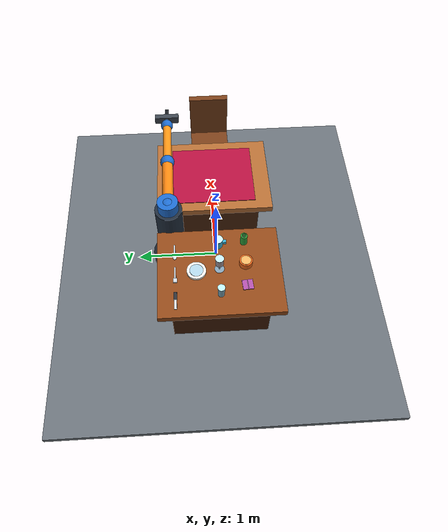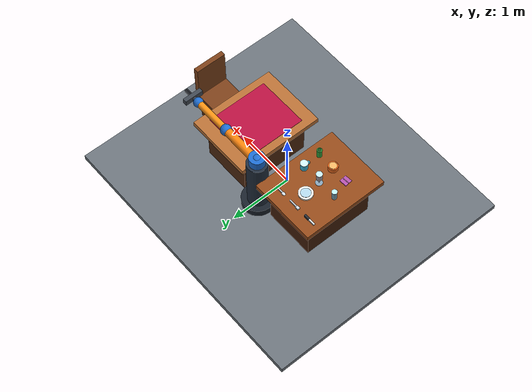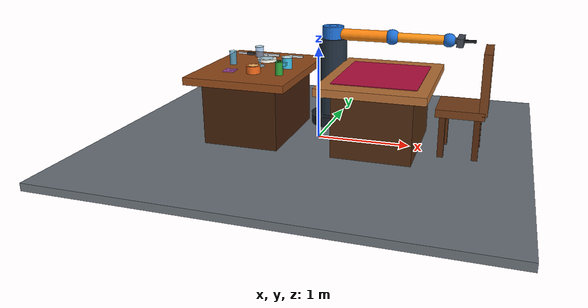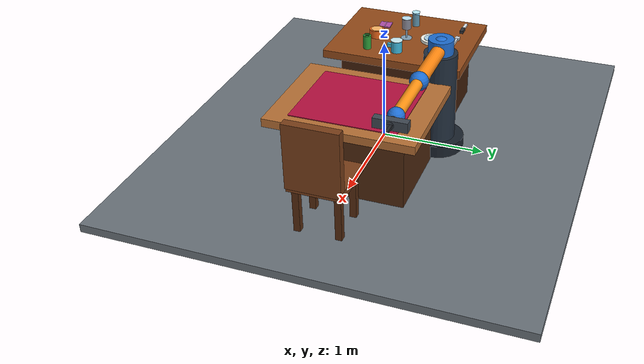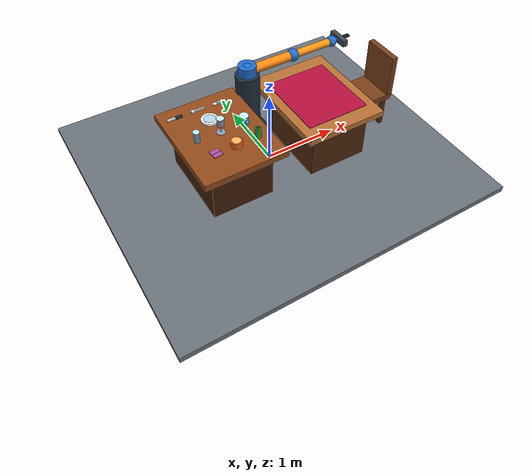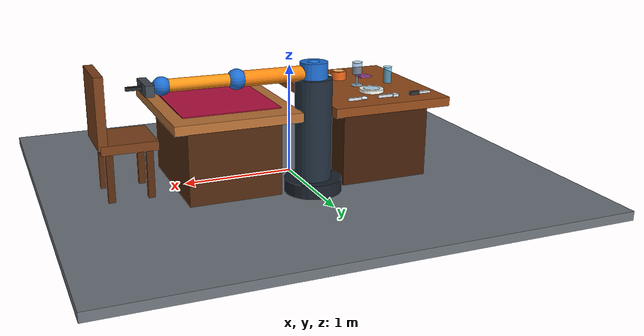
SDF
<?xml version="1.0"?>
<sdf version="1.10">
  <world name="arm_table_setting">
    <gravity>0 0 -9.81</gravity>
    <physics name="stable" type="ignored">
      <max_step_size>0.001</max_step_size>
      <real_time_factor>1.0</real_time_factor>
    </physics>
    <plugin filename="gz-sim-physics-system" name="gz::sim::systems::Physics"/>
    <plugin filename="gz-sim-user-commands-system" name="gz::sim::systems::UserCommands"/>
    <plugin filename="gz-sim-scene-broadcaster-system" name="gz::sim::systems::SceneBroadcaster"/>
    <plugin filename="gz-sim-sensors-system" name="gz::sim::systems::Sensors">
      <render_engine>ogre</render_engine>
    </plugin>

    <scene>
      <ambient>0.58 0.58 0.58 1</ambient>
      <background>0.80 0.87 0.94 1</background>
      <shadows>false</shadows>
      <grid>true</grid>
    </scene>
    <light name="sun" type="directional">
      <cast_shadows>false</cast_shadows>
      <pose>0 0 7 0 0 0</pose>
      <diffuse>0.95 0.95 0.95 1</diffuse>
      <specular>0.20 0.20 0.20 1</specular>
      <direction>-0.4 0.3 -1</direction>
    </light>

    <model name="floor">
      <static>true</static>
      <link name="body">
        <collision name="collision"><pose>0 0 -0.04 0 0 0</pose><geometry><box><size>4.5 4 0.08</size></box></geometry></collision>
        <visual name="visual"><pose>0 0 -0.04 0 0 0</pose><geometry><box><size>4.5 4 0.08</size></box></geometry><material><ambient>0.32 0.35 0.38 1</ambient><diffuse>0.42 0.45 0.48 1</diffuse></material></visual>
      </link>
    </model>

    <!-- Fixed RGB camera used by the image-based perception node. Gazebo
         cameras look along local +X; pitch +90 degrees points it downwards. -->
    <model name="overhead_camera">
      <static>true</static>
      <pose>-0.70 0 2.45 0 1.57079632679 0</pose>
      <link name="camera_link">
        <sensor name="rgb_sensor" type="camera">
          <always_on>true</always_on>
          <update_rate>5</update_rate>
          <topic>/table_setting/camera/image</topic>
          <camera>
            <horizontal_fov>1.0</horizontal_fov>
            <image>
              <width>640</width>
              <height>480</height>
              <format>R8G8B8</format>
            </image>
            <clip><near>0.05</near><far>5.0</far></clip>
          </camera>
        </sensor>
      </link>
    </model>

    <!-- Second RGB camera dedicated to the destination table. It estimates
         the real settled poses used by clean table. -->
    <model name="destination_overhead_camera">
      <static>true</static>
      <pose>0.70 0 2.45 0 1.57079632679 0</pose>
      <link name="camera_link">
        <sensor name="rgb_sensor" type="camera">
          <always_on>true</always_on>
          <update_rate>5</update_rate>
          <topic>/table_setting/destination_camera/image</topic>
          <camera>
            <horizontal_fov>1.0</horizontal_fov>
            <image>
              <width>640</width>
              <height>480</height>
              <format>R8G8B8</format>
            </image>
            <clip><near>0.05</near><far>5.0</far></clip>
          </camera>
        </sensor>
      </link>
    </model>

    <model name="source_table">
      <static>true</static><pose>-0.70 0 0 0 0 0</pose>
      <link name="body">
        <collision name="top"><pose>0 0 0.71 0 0 0</pose><geometry><box><size>1.10 1.40 0.08</size></box></geometry></collision>
        <visual name="top"><pose>0 0 0.71 0 0 0</pose><geometry><box><size>1.10 1.40 0.08</size></box></geometry><material><ambient>0.34 0.16 0.06 1</ambient><diffuse>0.58 0.29 0.10 1</diffuse></material></visual>
        <collision name="legs"><pose>0 0 0.34 0 0 0</pose><geometry><box><size>0.82 1.12 0.68</size></box></geometry></collision>
        <visual name="legs"><pose>0 0 0.34 0 0 0</pose><geometry><box><size>0.82 1.12 0.68</size></box></geometry><material><ambient>0.18 0.08 0.03 1</ambient><diffuse>0.26 0.12 0.04 1</diffuse></material></visual>
      </link>
      <!-- Source-table locks keep every waiting object immobile. The
           controller releases only the object already secured by the arm. -->
      <plugin filename="gz-sim-detachable-joint-system" name="gz::sim::systems::DetachableJoint"><parent_link>body</parent_link><child_model>glass</child_model><child_link>body</child_link><attach_topic>/table_setting/source_hold/glass/attach</attach_topic><detach_topic>/table_setting/source_hold/glass/detach</detach_topic></plugin>
      <plugin filename="gz-sim-detachable-joint-system" name="gz::sim::systems::DetachableJoint"><parent_link>body</parent_link><child_model>wine_glass</child_model><child_link>body</child_link><attach_topic>/table_setting/source_hold/wine_glass/attach</attach_topic><detach_topic>/table_setting/source_hold/wine_glass/detach</detach_topic></plugin>
      <plugin filename="gz-sim-detachable-joint-system" name="gz::sim::systems::DetachableJoint"><parent_link>body</parent_link><child_model>plate</child_model><child_link>body</child_link><attach_topic>/table_setting/source_hold/plate/attach</attach_topic><detach_topic>/table_setting/source_hold/plate/detach</detach_topic></plugin>
      <plugin filename="gz-sim-detachable-joint-system" name="gz::sim::systems::DetachableJoint"><parent_link>body</parent_link><child_model>cup</child_model><child_link>body</child_link><attach_topic>/table_setting/source_hold/cup/attach</attach_topic><detach_topic>/table_setting/source_hold/cup/detach</detach_topic></plugin>
      <plugin filename="gz-sim-detachable-joint-system" name="gz::sim::systems::DetachableJoint"><parent_link>body</parent_link><child_model>spoon</child_model><child_link>body</child_link><attach_topic>/table_setting/source_hold/spoon/attach</attach_topic><detach_topic>/table_setting/source_hold/spoon/detach</detach_topic></plugin>
      <plugin filename="gz-sim-detachable-joint-system" name="gz::sim::systems::DetachableJoint"><parent_link>body</parent_link><child_model>fork</child_model><child_link>body</child_link><attach_topic>/table_setting/source_hold/fork/attach</attach_topic><detach_topic>/table_setting/source_hold/fork/detach</detach_topic></plugin>
      <plugin filename="gz-sim-detachable-joint-system" name="gz::sim::systems::DetachableJoint"><parent_link>body</parent_link><child_model>knife</child_model><child_link>body</child_link><attach_topic>/table_setting/source_hold/knife/attach</attach_topic><detach_topic>/table_setting/source_hold/knife/detach</detach_topic></plugin>
      <plugin filename="gz-sim-detachable-joint-system" name="gz::sim::systems::DetachableJoint"><parent_link>body</parent_link><child_model>bottle</child_model><child_link>body</child_link><attach_topic>/table_setting/source_hold/bottle/attach</attach_topic><detach_topic>/table_setting/source_hold/bottle/detach</detach_topic></plugin>
      <plugin filename="gz-sim-detachable-joint-system" name="gz::sim::systems::DetachableJoint"><parent_link>body</parent_link><child_model>bowl</child_model><child_link>body</child_link><attach_topic>/table_setting/source_hold/bowl/attach</attach_topic><detach_topic>/table_setting/source_hold/bowl/detach</detach_topic></plugin>
      <plugin filename="gz-sim-detachable-joint-system" name="gz::sim::systems::DetachableJoint"><parent_link>body</parent_link><child_model>napkin</child_model><child_link>body</child_link><attach_topic>/table_setting/source_hold/napkin/attach</attach_topic><detach_topic>/table_setting/source_hold/napkin/detach</detach_topic></plugin>
    </model>

    <model name="destination_table">
      <static>true</static><pose>0.70 0 0 0 0 0</pose>
      <link name="body">
        <collision name="top"><pose>0 0 0.71 0 0 0</pose><geometry><box><size>1.10 1.40 0.08</size></box></geometry></collision>
        <visual name="top"><pose>0 0 0.71 0 0 0</pose><geometry><box><size>1.10 1.40 0.08</size></box></geometry><material><ambient>0.51 0.29 0.12 1</ambient><diffuse>0.72 0.44 0.21 1</diffuse></material></visual>
        <collision name="legs"><pose>0 0 0.34 0 0 0</pose><geometry><box><size>0.82 1.12 0.68</size></box></geometry></collision>
        <visual name="legs"><pose>0 0 0.34 0 0 0</pose><geometry><box><size>0.82 1.12 0.68</size></box></geometry><material><ambient>0.20 0.10 0.04 1</ambient><diffuse>0.31 0.16 0.06 1</diffuse></material></visual>
        <!-- The placemat has both visual and collision geometry. Its upper
             surface is z=0.760, preventing objects from sinking visually. -->
        <collision name="placemat"><pose>0 0 0.756 0 0 0</pose><geometry><box><size>0.86 1.00 0.008</size></box></geometry></collision>
        <visual name="placemat"><pose>0 0 0.756 0 0 0</pose><geometry><box><size>0.86 1.00 0.008</size></box></geometry><material><ambient>0.45 0.03 0.16 1</ambient><diffuse>0.72 0.06 0.25 1</diffuse></material></visual>
      </link>
      <!-- Destination-table locks engage immediately after release so placed
           objects cannot slide, rotate or be hit by a later motion. -->
      <plugin filename="gz-sim-detachable-joint-system" name="gz::sim::systems::DetachableJoint"><parent_link>body</parent_link><child_model>glass</child_model><child_link>body</child_link><attach_topic>/table_setting/destination_hold/glass/attach</attach_topic><detach_topic>/table_setting/destination_hold/glass/detach</detach_topic></plugin>
      <plugin filename="gz-sim-detachable-joint-system" name="gz::sim::systems::DetachableJoint"><parent_link>body</parent_link><child_model>wine_glass</child_model><child_link>body</child_link><attach_topic>/table_setting/destination_hold/wine_glass/attach</attach_topic><detach_topic>/table_setting/destination_hold/wine_glass/detach</detach_topic></plugin>
      <plugin filename="gz-sim-detachable-joint-system" name="gz::sim::systems::DetachableJoint"><parent_link>body</parent_link><child_model>plate</child_model><child_link>body</child_link><attach_topic>/table_setting/destination_hold/plate/attach</attach_topic><detach_topic>/table_setting/destination_hold/plate/detach</detach_topic></plugin>
      <plugin filename="gz-sim-detachable-joint-system" name="gz::sim::systems::DetachableJoint"><parent_link>body</parent_link><child_model>cup</child_model><child_link>body</child_link><attach_topic>/table_setting/destination_hold/cup/attach</attach_topic><detach_topic>/table_setting/destination_hold/cup/detach</detach_topic></plugin>
      <plugin filename="gz-sim-detachable-joint-system" name="gz::sim::systems::DetachableJoint"><parent_link>body</parent_link><child_model>spoon</child_model><child_link>body</child_link><attach_topic>/table_setting/destination_hold/spoon/attach</attach_topic><detach_topic>/table_setting/destination_hold/spoon/detach</detach_topic></plugin>
      <plugin filename="gz-sim-detachable-joint-system" name="gz::sim::systems::DetachableJoint"><parent_link>body</parent_link><child_model>fork</child_model><child_link>body</child_link><attach_topic>/table_setting/destination_hold/fork/attach</attach_topic><detach_topic>/table_setting/destination_hold/fork/detach</detach_topic></plugin>
      <plugin filename="gz-sim-detachable-joint-system" name="gz::sim::systems::DetachableJoint"><parent_link>body</parent_link><child_model>knife</child_model><child_link>body</child_link><attach_topic>/table_setting/destination_hold/knife/attach</attach_topic><detach_topic>/table_setting/destination_hold/knife/detach</detach_topic></plugin>
      <plugin filename="gz-sim-detachable-joint-system" name="gz::sim::systems::DetachableJoint"><parent_link>body</parent_link><child_model>bottle</child_model><child_link>body</child_link><attach_topic>/table_setting/destination_hold/bottle/attach</attach_topic><detach_topic>/table_setting/destination_hold/bottle/detach</detach_topic></plugin>
      <plugin filename="gz-sim-detachable-joint-system" name="gz::sim::systems::DetachableJoint"><parent_link>body</parent_link><child_model>bowl</child_model><child_link>body</child_link><attach_topic>/table_setting/destination_hold/bowl/attach</attach_topic><detach_topic>/table_setting/destination_hold/bowl/detach</detach_topic></plugin>
      <plugin filename="gz-sim-detachable-joint-system" name="gz::sim::systems::DetachableJoint"><parent_link>body</parent_link><child_model>napkin</child_model><child_link>body</child_link><attach_topic>/table_setting/destination_hold/napkin/attach</attach_topic><detach_topic>/table_setting/destination_hold/napkin/detach</detach_topic></plugin>
    </model>

    <!-- Chair on the side opposite the robot. Its back is on +X, so a seated
         person faces the destination table in the -X direction. -->
    <model name="dining_chair">
      <static>true</static><pose>1.52 0 0 0 0 0</pose>
      <link name="body">
        <collision name="seat"><pose>0 0 0.47 0 0 0</pose><geometry><box><size>0.48 0.50 0.08</size></box></geometry></collision>
        <visual name="seat"><pose>0 0 0.47 0 0 0</pose><geometry><box><size>0.48 0.50 0.08</size></box></geometry><material><ambient>0.24 0.12 0.05 1</ambient><diffuse>0.48 0.25 0.10 1</diffuse></material></visual>
        <collision name="back"><pose>0.22 0 0.78 0 0 0</pose><geometry><box><size>0.08 0.50 0.62</size></box></geometry></collision>
        <visual name="back"><pose>0.22 0 0.78 0 0 0</pose><geometry><box><size>0.08 0.50 0.62</size></box></geometry><material><ambient>0.24 0.12 0.05 1</ambient><diffuse>0.48 0.25 0.10 1</diffuse></material></visual>
        <collision name="front_left_leg"><pose>-0.17 0.19 0.225 0 0 0</pose><geometry><box><size>0.06 0.06 0.45</size></box></geometry></collision>
        <visual name="front_left_leg"><pose>-0.17 0.19 0.225 0 0 0</pose><geometry><box><size>0.06 0.06 0.45</size></box></geometry><material><ambient>0.16 0.08 0.03 1</ambient><diffuse>0.34 0.17 0.06 1</diffuse></material></visual>
        <collision name="front_right_leg"><pose>-0.17 -0.19 0.225 0 0 0</pose><geometry><box><size>0.06 0.06 0.45</size></box></geometry></collision>
        <visual name="front_right_leg"><pose>-0.17 -0.19 0.225 0 0 0</pose><geometry><box><size>0.06 0.06 0.45</size></box></geometry><material><ambient>0.16 0.08 0.03 1</ambient><diffuse>0.34 0.17 0.06 1</diffuse></material></visual>
        <collision name="back_left_leg"><pose>0.17 0.19 0.225 0 0 0</pose><geometry><box><size>0.06 0.06 0.45</size></box></geometry></collision>
        <visual name="back_left_leg"><pose>0.17 0.19 0.225 0 0 0</pose><geometry><box><size>0.06 0.06 0.45</size></box></geometry><material><ambient>0.16 0.08 0.03 1</ambient><diffuse>0.34 0.17 0.06 1</diffuse></material></visual>
        <collision name="back_right_leg"><pose>0.17 -0.19 0.225 0 0 0</pose><geometry><box><size>0.06 0.06 0.45</size></box></geometry></collision>
        <visual name="back_right_leg"><pose>0.17 -0.19 0.225 0 0 0</pose><geometry><box><size>0.06 0.06 0.45</size></box></geometry><material><ambient>0.16 0.08 0.03 1</ambient><diffuse>0.34 0.17 0.06 1</diffuse></material></visual>
      </link>
    </model>

    <!-- Three additional objects recognized by computer vision. They do not
         belong to a fixed meal recipe, but can be requested by name. -->
    <model name="bottle"><pose>-0.34 -0.30 0.825 0 0 0</pose><link name="body">
      <inertial><mass>0.25</mass><inertia><ixx>0.0012</ixx><iyy>0.0012</iyy><izz>0.0004</izz></inertia></inertial>
      <collision name="collision"><geometry><cylinder><radius>0.040</radius><length>0.15</length></cylinder></geometry></collision>
      <visual name="body"><pose>0 0 -0.006 0 0 0</pose><geometry><cylinder><radius>0.040</radius><length>0.138</length></cylinder></geometry><material><ambient>0.08 0.40 0.12 1</ambient><diffuse>0.18 0.62 0.22 1</diffuse></material></visual>
      <visual name="cap"><pose>0 0 0.069 0 0 0</pose><geometry><cylinder><radius>0.025</radius><length>0.012</length></cylinder></geometry><material><ambient>0.04 0.18 0.06 1</ambient><diffuse>0.08 0.30 0.10 1</diffuse></material></visual>
    </link></model>

    <model name="bowl"><pose>-0.63 -0.30 0.790 0 0 0</pose><link name="body">
      <inertial><mass>0.20</mass><inertia><ixx>0.00045</ixx><iyy>0.00045</iyy><izz>0.00065</izz></inertia></inertial>
      <collision name="collision"><geometry><cylinder><radius>0.075</radius><length>0.08</length></cylinder></geometry></collision>
      <visual name="outer"><geometry><cylinder><radius>0.075</radius><length>0.08</length></cylinder></geometry><material><ambient>0.75 0.25 0.06 1</ambient><diffuse>0.92 0.40 0.10 1</diffuse></material></visual>
      <visual name="inside"><pose>0 0 0.041 0 0 0</pose><geometry><cylinder><radius>0.058</radius><length>0.004</length></cylinder></geometry><material><ambient>0.98 0.66 0.35 1</ambient><diffuse>1.0 0.72 0.40 1</diffuse></material></visual>
    </link></model>

    <model name="napkin"><pose>-0.90 -0.30 0.756 0 0 0.08</pose><link name="body">
      <inertial><mass>0.08</mass><inertia><ixx>0.00010</ixx><iyy>0.00010</iyy><izz>0.00018</izz></inertia></inertial>
      <collision name="collision"><geometry><box><size>0.12 0.12 0.012</size></box></geometry></collision>
      <visual name="fabric"><geometry><box><size>0.12 0.12 0.012</size></box></geometry><material><ambient>0.50 0.16 0.48 1</ambient><diffuse>0.70 0.32 0.68 1</diffuse></material></visual>
      <visual name="fold"><pose>0 0 0.007 0 0 0</pose><geometry><box><size>0.105 0.008 0.003</size></box></geometry><material><ambient>0.72 0.38 0.70 1</ambient><diffuse>0.86 0.55 0.84 1</diffuse></material></visual>
    </link></model>

    <!-- Seven task-relevant dynamic table objects. -->
    <model name="glass"><pose>-1.00 0.00 0.825 0 0 0</pose><link name="body">
      <inertial><mass>0.12</mass><inertia><ixx>0.0003</ixx><iyy>0.0003</iyy><izz>0.0002</izz></inertia></inertial>
      <collision name="collision"><geometry><cylinder><radius>0.0375</radius><length>0.15</length></cylinder></geometry></collision>
      <visual name="glass"><geometry><cylinder><radius>0.0375</radius><length>0.15</length></cylinder></geometry><material><ambient>0.30 0.72 0.94 0.72</ambient><diffuse>0.30 0.72 0.94 0.72</diffuse></material></visual>
      <visual name="rim"><pose>0 0 0.075 0 0 0</pose><geometry><cylinder><radius>0.042</radius><length>0.004</length></cylinder></geometry><material><ambient>0.75 0.95 1 1</ambient><diffuse>0.75 0.95 1 1</diffuse></material></visual>
    </link></model>

    <model name="wine_glass"><pose>-0.68 0.00 0.860 0 0 0</pose><link name="body">
      <inertial><mass>0.16</mass><inertia><ixx>0.0007</ixx><iyy>0.0007</iyy><izz>0.0003</izz></inertia></inertial>
      <!-- Primitive collision proxy keeps the tall glass stable with ODE. -->
      <collision name="collision"><geometry><cylinder><radius>0.045</radius><length>0.22</length></cylinder></geometry></collision>
      <visual name="base"><pose>0 0 -0.106 0 0 0</pose><geometry><cylinder><radius>0.055</radius><length>0.008</length></cylinder></geometry><material><ambient>0.55 0.78 0.94 0.78</ambient><diffuse>0.55 0.78 0.94 0.78</diffuse></material></visual>
      <visual name="stem"><pose>0 0 -0.050 0 0 0</pose><geometry><cylinder><radius>0.008</radius><length>0.105</length></cylinder></geometry><material><ambient>0.55 0.78 0.94 0.78</ambient><diffuse>0.55 0.78 0.94 0.78</diffuse></material></visual>
      <visual name="cup"><pose>0 0 0.055 0 0 0</pose><geometry><cylinder><radius>0.045</radius><length>0.11</length></cylinder></geometry><material><ambient>0.45 0.67 0.90 0.62</ambient><diffuse>0.45 0.67 0.90 0.62</diffuse></material></visual>
      <visual name="rim"><pose>0 0 0.110 0 0 0</pose><geometry><cylinder><radius>0.049</radius><length>0.004</length></cylinder></geometry><material><ambient>0.78 0.93 1 1</ambient><diffuse>0.78 0.93 1 1</diffuse></material></visual>
    </link></model>

    <model name="plate"><pose>-0.70 0.26 0.765 0 0 0</pose><link name="body">
      <inertial><mass>0.28</mass><inertia><ixx>0.0007</ixx><iyy>0.0007</iyy><izz>0.0013</izz></inertia></inertial>
      <!-- Slightly smaller collision rim gives the parallel fingers a stable,
           visible edge grasp while preserving the 22 cm rendered plate. -->
      <collision name="collision"><geometry><cylinder><radius>0.10</radius><length>0.03</length></cylinder></geometry></collision>
      <visual name="plate"><geometry><cylinder><radius>0.11</radius><length>0.03</length></cylinder></geometry><material><ambient>0.92 0.92 0.88 1</ambient><diffuse>0.98 0.98 0.94 1</diffuse></material></visual>
      <visual name="inside"><pose>0 0 0.016 0 0 0</pose><geometry><cylinder><radius>0.077</radius><length>0.004</length></cylinder></geometry><material><ambient>0.70 0.84 0.91 1</ambient><diffuse>0.70 0.84 0.91 1</diffuse></material></visual>
    </link></model>

    <model name="cup"><pose>-0.36 0.00 0.810 0 0 0</pose><link name="body">
      <inertial><mass>0.18</mass><inertia><ixx>0.00035</ixx><iyy>0.00035</iyy><izz>0.00025</izz></inertia></inertial>
      <!-- Stable primitive proxies: mug body plus its handle. -->
      <collision name="body_collision"><geometry><cylinder><radius>0.055</radius><length>0.12</length></cylinder></geometry></collision>
      <collision name="handle_collision"><pose>0 -0.072 0 0 0 0</pose><geometry><box><size>0.035 0.045 0.035</size></box></geometry></collision>
      <visual name="outer"><geometry><cylinder><radius>0.055</radius><length>0.12</length></cylinder></geometry><material><ambient>0.20 0.62 0.76 1</ambient><diffuse>0.24 0.72 0.86 1</diffuse></material></visual>
      <visual name="rim"><pose>0 0 0.061 0 0 0</pose><geometry><cylinder><radius>0.059</radius><length>0.006</length></cylinder></geometry><material><ambient>0.82 0.95 0.98 1</ambient><diffuse>0.82 0.95 0.98 1</diffuse></material></visual>
      <visual name="handle"><pose>0 -0.072 0 0 0 0</pose><geometry><box><size>0.035 0.045 0.035</size></box></geometry><material><ambient>0.20 0.62 0.76 1</ambient><diffuse>0.24 0.72 0.86 1</diffuse></material></visual>
    </link></model>

    <model name="spoon"><pose>-0.44 0.50 0.765 0 0 0</pose><link name="body">
      <inertial><mass>0.055</mass><inertia><ixx>0.00018</ixx><iyy>0.00002</iyy><izz>0.00018</izz></inertia></inertial>
      <collision name="handle"><pose>0.025 0 0 0 0 0</pose><geometry><box><size>0.13 0.018 0.025</size></box></geometry></collision>
      <!-- Flat primitive proxy: unlike a sphere it cannot roll after release;
           the rendered spoon head remains ellipsoidal. -->
      <collision name="head"><pose>-0.065 0 0 0 0 0</pose><geometry><box><size>0.070 0.048 0.025</size></box></geometry></collision>
      <visual name="handle"><pose>0.025 0 0 0 0 0</pose><geometry><box><size>0.13 0.018 0.025</size></box></geometry><material><ambient>0.67 0.70 0.74 1</ambient><diffuse>0.84 0.87 0.90 1</diffuse></material></visual>
      <visual name="head"><pose>-0.065 0 0 0 0 0</pose><geometry><ellipsoid><radii>0.035 0.024 0.015</radii></ellipsoid></geometry><material><ambient>0.67 0.70 0.74 1</ambient><diffuse>0.84 0.87 0.90 1</diffuse></material></visual>
    </link></model>

    <model name="fork"><pose>-0.74 0.50 0.765 0 0 0</pose><link name="body">
      <inertial><mass>0.06</mass><inertia><ixx>0.00019</ixx><iyy>0.00002</iyy><izz>0.00019</izz></inertia></inertial>
      <collision name="handle"><pose>0.025 0 0 0 0 0</pose><geometry><box><size>0.14 0.018 0.025</size></box></geometry></collision>
      <collision name="head"><pose>-0.072 0 0 0 0 0</pose><geometry><box><size>0.055 0.045 0.025</size></box></geometry></collision>
      <visual name="handle"><pose>0.025 0 0 0 0 0</pose><geometry><box><size>0.14 0.018 0.025</size></box></geometry><material><ambient>0.65 0.68 0.72 1</ambient><diffuse>0.83 0.86 0.89 1</diffuse></material></visual>
      <!-- The head overlaps the handle by 1 mm so the RGB segmentation sees
           one connected fork contour instead of two independent objects. -->
      <visual name="head"><pose>-0.069 0 0 0 0 0</pose><geometry><box><size>0.050 0.045 0.025</size></box></geometry><material><ambient>0.65 0.68 0.72 1</ambient><diffuse>0.83 0.86 0.89 1</diffuse></material></visual>
    </link></model>

    <model name="knife"><pose>-1.06 0.50 0.765 0 0 0</pose><link name="body">
      <inertial><mass>0.075</mass><inertia><ixx>0.00022</ixx><iyy>0.000025</iyy><izz>0.00022</izz></inertia></inertial>
      <collision name="handle"><pose>0.055 0 0 0 0 0</pose><geometry><box><size>0.09 0.035 0.03</size></box></geometry></collision>
      <collision name="blade"><pose>-0.045 0 0 0 0 0</pose><geometry><box><size>0.11 0.028 0.018</size></box></geometry></collision>
      <visual name="handle"><pose>0.055 0 0 0 0 0</pose><geometry><box><size>0.09 0.035 0.03</size></box></geometry><material><ambient>0.10 0.11 0.12 1</ambient><diffuse>0.18 0.19 0.21 1</diffuse></material></visual>
      <visual name="blade"><pose>-0.045 0 0 0 0 0</pose><geometry><box><size>0.11 0.028 0.018</size></box></geometry><material><ambient>0.68 0.71 0.75 1</ambient><diffuse>0.88 0.91 0.94 1</diffuse></material></visual>
    </link></model>

    <!-- Four-axis articulated arm with a two-finger parallel gripper. -->
    <model name="table_setting_arm"><pose>0 0.55 0 0 0 0</pose><self_collide>false</self_collide>
      <link name="base">
        <inertial><mass>35</mass><inertia><ixx>3</ixx><iyy>3</iyy><izz>3</izz></inertia></inertial>
        <collision name="pedestal"><pose>0 0 0.50 0 0 0</pose><geometry><cylinder><radius>0.16</radius><length>1.0</length></cylinder></geometry></collision>
        <visual name="pedestal"><pose>0 0 0.50 0 0 0</pose><geometry><cylinder><radius>0.16</radius><length>1.0</length></cylinder></geometry><material><ambient>0.08 0.11 0.15 1</ambient><diffuse>0.13 0.18 0.24 1</diffuse></material></visual>
        <visual name="foot"><pose>0 0 0.06 0 0 0</pose><geometry><cylinder><radius>0.25</radius><length>0.12</length></cylinder></geometry><material><ambient>0.06 0.08 0.11 1</ambient><diffuse>0.10 0.13 0.17 1</diffuse></material></visual>
      </link>
      <link name="turret"><pose>0 0 1.05 0 0 0</pose>
        <inertial><mass>6</mass><inertia><ixx>0.12</ixx><iyy>0.12</iyy><izz>0.12</izz></inertia></inertial>
        <collision name="collision"><geometry><cylinder><radius>0.12</radius><length>0.18</length></cylinder></geometry></collision>
        <visual name="visual"><geometry><cylinder><radius>0.12</radius><length>0.18</length></cylinder></geometry><material><ambient>0.10 0.32 0.61 1</ambient><diffuse>0.12 0.43 0.82 1</diffuse></material></visual>
      </link>
      <link name="upper_arm"><pose relative_to="turret">0 0 0 0 0 0</pose>
        <inertial><pose>0.34 0 0 0 0 0</pose><mass>5</mass><inertia><ixx>0.07</ixx><iyy>0.20</iyy><izz>0.20</izz></inertia></inertial>
        <collision name="collision"><pose>0.34 0 0 0 1.5708 0</pose><geometry><cylinder><radius>0.065</radius><length>0.68</length></cylinder></geometry></collision>
        <visual name="arm"><pose>0.34 0 0 0 1.5708 0</pose><geometry><cylinder><radius>0.065</radius><length>0.68</length></cylinder></geometry><material><ambient>0.92 0.42 0.05 1</ambient><diffuse>1.0 0.53 0.06 1</diffuse></material></visual>
        <visual name="shoulder"><geometry><sphere><radius>0.105</radius></sphere></geometry><material><ambient>0.10 0.32 0.61 1</ambient><diffuse>0.12 0.43 0.82 1</diffuse></material></visual>
      </link>
      <link name="forearm"><pose relative_to="upper_arm">0.68 0 0 0 0 0</pose>
        <inertial><pose>0.31 0 0 0 0 0</pose><mass>3.5</mass><inertia><ixx>0.05</ixx><iyy>0.14</iyy><izz>0.14</izz></inertia></inertial>
        <collision name="collision"><pose>0.31 0 0 0 1.5708 0</pose><geometry><cylinder><radius>0.052</radius><length>0.62</length></cylinder></geometry></collision>
        <visual name="arm"><pose>0.31 0 0 0 1.5708 0</pose><geometry><cylinder><radius>0.052</radius><length>0.62</length></cylinder></geometry><material><ambient>0.93 0.46 0.06 1</ambient><diffuse>1.0 0.58 0.08 1</diffuse></material></visual>
        <visual name="elbow"><geometry><sphere><radius>0.085</radius></sphere></geometry><material><ambient>0.10 0.32 0.61 1</ambient><diffuse>0.12 0.43 0.82 1</diffuse></material></visual>
      </link>
      <link name="wrist"><pose relative_to="forearm">0.62 0 0 0 0 0</pose>
        <inertial><mass>1.2</mass><inertia><ixx>0.025</ixx><iyy>0.025</iyy><izz>0.025</izz></inertia></inertial>
        <collision name="collision"><geometry><sphere><radius>0.07</radius></sphere></geometry></collision>
        <visual name="joint"><geometry><sphere><radius>0.075</radius></sphere></geometry><material><ambient>0.10 0.32 0.61 1</ambient><diffuse>0.12 0.43 0.82 1</diffuse></material></visual>
        <visual name="connector"><pose>0.08 0 0 0 1.5708 0</pose><geometry><cylinder><radius>0.035</radius><length>0.16</length></cylinder></geometry><material><ambient>0.16 0.18 0.21 1</ambient><diffuse>0.24 0.27 0.31 1</diffuse></material></visual>
      </link>
      <link name="gripper_palm"><pose relative_to="wrist">0.16 0 0 0 0 0</pose>
        <inertial><mass>0.8</mass><inertia><ixx>0.012</ixx><iyy>0.012</iyy><izz>0.012</izz></inertia></inertial>
        <!-- Wide carriage: at maximum opening both sliding fingers still
             overlap the palm visually instead of appearing detached. -->
        <collision name="collision"><pose>-0.035 0 0 0 0 0</pose><geometry><box><size>0.07 0.30 0.09</size></box></geometry></collision>
        <visual name="palm"><pose>-0.035 0 0 0 0 0</pose><geometry><box><size>0.07 0.30 0.09</size></box></geometry><material><ambient>0.15 0.17 0.19 1</ambient><diffuse>0.25 0.28 0.32 1</diffuse></material></visual>
      </link>
      <link name="left_finger"><pose relative_to="gripper_palm">0 0.012 0 0 0 0</pose>
        <inertial><mass>0.12</mass><inertia><ixx>0.001</ixx><iyy>0.001</iyy><izz>0.001</izz></inertia></inertial>
        <collision name="collision"><pose>0.055 0 0 0 0 0</pose><geometry><box><size>0.14 0.024 0.025</size></box></geometry></collision>
        <visual name="finger"><pose>0.055 0 0 0 0 0</pose><geometry><box><size>0.14 0.024 0.025</size></box></geometry><material><ambient>0.08 0.09 0.10 1</ambient><diffuse>0.14 0.15 0.17 1</diffuse></material></visual>
      </link>
      <link name="right_finger"><pose relative_to="gripper_palm">0 -0.012 0 0 0 0</pose>
        <inertial><mass>0.12</mass><inertia><ixx>0.001</ixx><iyy>0.001</iyy><izz>0.001</izz></inertia></inertial>
        <collision name="collision"><pose>0.055 0 0 0 0 0</pose><geometry><box><size>0.14 0.024 0.025</size></box></geometry></collision>
        <visual name="finger"><pose>0.055 0 0 0 0 0</pose><geometry><box><size>0.14 0.024 0.025</size></box></geometry><material><ambient>0.08 0.09 0.10 1</ambient><diffuse>0.14 0.15 0.17 1</diffuse></material></visual>
      </link>

      <joint name="base_world" type="fixed"><parent>world</parent><child>base</child></joint>
      <joint name="base_yaw" type="revolute"><parent>base</parent><child>turret</child><pose relative_to="turret">0 0 0 0 0 0</pose><axis><xyz>0 0 1</xyz><limit><lower>-3.14</lower><upper>3.14</upper><effort>800</effort><velocity>1.2</velocity></limit><dynamics><damping>18</damping></dynamics></axis></joint>
      <joint name="shoulder_pitch" type="revolute"><parent>turret</parent><child>upper_arm</child><pose relative_to="upper_arm">0 0 0 0 0 0</pose><axis><xyz>0 1 0</xyz><limit><lower>-1.8</lower><upper>1.2</upper><effort>900</effort><velocity>1.0</velocity></limit><dynamics><damping>20</damping></dynamics></axis></joint>
      <joint name="elbow_pitch" type="revolute"><parent>upper_arm</parent><child>forearm</child><pose relative_to="forearm">0 0 0 0 0 0</pose><axis><xyz>0 1 0</xyz><limit><lower>0.05</lower><upper>2.75</upper><effort>650</effort><velocity>1.2</velocity></limit><dynamics><damping>16</damping></dynamics></axis></joint>
      <joint name="wrist_pitch" type="revolute"><parent>forearm</parent><child>wrist</child><pose relative_to="wrist">0 0 0 0 0 0</pose><axis><xyz>0 1 0</xyz><limit><lower>-2.9</lower><upper>2.9</upper><effort>300</effort><velocity>1.5</velocity></limit><dynamics><damping>10</damping></dynamics></axis></joint>
      <joint name="gripper_roll" type="revolute"><parent>wrist</parent><child>gripper_palm</child><pose relative_to="gripper_palm">0 0 0 0 0 0</pose><axis><xyz>1 0 0</xyz><limit><lower>-3.14</lower><upper>3.14</upper><effort>180</effort><velocity>1.5</velocity></limit><dynamics><damping>8</damping></dynamics></axis></joint>
      <joint name="left_finger_joint" type="prismatic"><parent>gripper_palm</parent><child>left_finger</child><pose relative_to="left_finger">0 0 0 0 0 0</pose><axis><xyz>0 1 0</xyz><limit><lower>0</lower><upper>0.11</upper><effort>120</effort><velocity>0.25</velocity></limit><dynamics><damping>8</damping></dynamics></axis></joint>
      <joint name="right_finger_joint" type="prismatic"><parent>gripper_palm</parent><child>right_finger</child><pose relative_to="right_finger">0 0 0 0 0 0</pose><axis><xyz>0 -1 0</xyz><limit><lower>0</lower><upper>0.11</upper><effort>120</effort><velocity>0.25</velocity></limit><dynamics><damping>8</damping></dynamics></axis></joint>

      <plugin filename="gz-sim-joint-position-controller-system" name="gz::sim::systems::JointPositionController"><joint_name>base_yaw</joint_name><topic>/table_setting/joint/base_yaw</topic><p_gain>500</p_gain><d_gain>55</d_gain><cmd_max>750</cmd_max><cmd_min>-750</cmd_min></plugin>
      <plugin filename="gz-sim-joint-position-controller-system" name="gz::sim::systems::JointPositionController"><joint_name>shoulder_pitch</joint_name><topic>/table_setting/joint/shoulder_pitch</topic><p_gain>650</p_gain><d_gain>70</d_gain><cmd_max>850</cmd_max><cmd_min>-850</cmd_min></plugin>
      <plugin filename="gz-sim-joint-position-controller-system" name="gz::sim::systems::JointPositionController"><joint_name>elbow_pitch</joint_name><topic>/table_setting/joint/elbow_pitch</topic><p_gain>520</p_gain><d_gain>55</d_gain><cmd_max>620</cmd_max><cmd_min>-620</cmd_min></plugin>
      <plugin filename="gz-sim-joint-position-controller-system" name="gz::sim::systems::JointPositionController"><joint_name>wrist_pitch</joint_name><topic>/table_setting/joint/wrist_pitch</topic><p_gain>300</p_gain><d_gain>32</d_gain><cmd_max>280</cmd_max><cmd_min>-280</cmd_min></plugin>
      <plugin filename="gz-sim-joint-position-controller-system" name="gz::sim::systems::JointPositionController"><joint_name>gripper_roll</joint_name><topic>/table_setting/joint/gripper_roll</topic><p_gain>260</p_gain><d_gain>28</d_gain><cmd_max>170</cmd_max><cmd_min>-170</cmd_min></plugin>
      <plugin filename="gz-sim-joint-position-controller-system" name="gz::sim::systems::JointPositionController"><joint_name>left_finger_joint</joint_name><topic>/table_setting/joint/left_finger</topic><p_gain>450</p_gain><d_gain>20</d_gain><cmd_max>110</cmd_max><cmd_min>-110</cmd_min></plugin>
      <plugin filename="gz-sim-joint-position-controller-system" name="gz::sim::systems::JointPositionController"><joint_name>right_finger_joint</joint_name><topic>/table_setting/joint/right_finger</topic><p_gain>450</p_gain><d_gain>20</d_gain><cmd_max>110</cmd_max><cmd_min>-110</cmd_min></plugin>

      <!-- The fixed grasp constraint is activated only after the fingers close. -->
      <plugin filename="gz-sim-detachable-joint-system" name="gz::sim::systems::DetachableJoint"><parent_link>gripper_palm</parent_link><child_model>glass</child_model><child_link>body</child_link><attach_topic>/table_setting/grip/glass/attach</attach_topic><detach_topic>/table_setting/grip/glass/detach</detach_topic></plugin>
      <plugin filename="gz-sim-detachable-joint-system" name="gz::sim::systems::DetachableJoint"><parent_link>gripper_palm</parent_link><child_model>wine_glass</child_model><child_link>body</child_link><attach_topic>/table_setting/grip/wine_glass/attach</attach_topic><detach_topic>/table_setting/grip/wine_glass/detach</detach_topic></plugin>
      <plugin filename="gz-sim-detachable-joint-system" name="gz::sim::systems::DetachableJoint"><parent_link>gripper_palm</parent_link><child_model>plate</child_model><child_link>body</child_link><attach_topic>/table_setting/grip/plate/attach</attach_topic><detach_topic>/table_setting/grip/plate/detach</detach_topic></plugin>
      <plugin filename="gz-sim-detachable-joint-system" name="gz::sim::systems::DetachableJoint"><parent_link>gripper_palm</parent_link><child_model>cup</child_model><child_link>body</child_link><attach_topic>/table_setting/grip/cup/attach</attach_topic><detach_topic>/table_setting/grip/cup/detach</detach_topic></plugin>
      <plugin filename="gz-sim-detachable-joint-system" name="gz::sim::systems::DetachableJoint"><parent_link>gripper_palm</parent_link><child_model>spoon</child_model><child_link>body</child_link><attach_topic>/table_setting/grip/spoon/attach</attach_topic><detach_topic>/table_setting/grip/spoon/detach</detach_topic></plugin>
      <plugin filename="gz-sim-detachable-joint-system" name="gz::sim::systems::DetachableJoint"><parent_link>gripper_palm</parent_link><child_model>fork</child_model><child_link>body</child_link><attach_topic>/table_setting/grip/fork/attach</attach_topic><detach_topic>/table_setting/grip/fork/detach</detach_topic></plugin>
      <plugin filename="gz-sim-detachable-joint-system" name="gz::sim::systems::DetachableJoint"><parent_link>gripper_palm</parent_link><child_model>knife</child_model><child_link>body</child_link><attach_topic>/table_setting/grip/knife/attach</attach_topic><detach_topic>/table_setting/grip/knife/detach</detach_topic></plugin>
      <plugin filename="gz-sim-detachable-joint-system" name="gz::sim::systems::DetachableJoint"><parent_link>gripper_palm</parent_link><child_model>bottle</child_model><child_link>body</child_link><attach_topic>/table_setting/grip/bottle/attach</attach_topic><detach_topic>/table_setting/grip/bottle/detach</detach_topic></plugin>
      <plugin filename="gz-sim-detachable-joint-system" name="gz::sim::systems::DetachableJoint"><parent_link>gripper_palm</parent_link><child_model>bowl</child_model><child_link>body</child_link><attach_topic>/table_setting/grip/bowl/attach</attach_topic><detach_topic>/table_setting/grip/bowl/detach</detach_topic></plugin>
      <plugin filename="gz-sim-detachable-joint-system" name="gz::sim::systems::DetachableJoint"><parent_link>gripper_palm</parent_link><child_model>napkin</child_model><child_link>body</child_link><attach_topic>/table_setting/grip/napkin/attach</attach_topic><detach_topic>/table_setting/grip/napkin/detach</detach_topic></plugin>
    </model>

    <gui fullscreen="0">
      <plugin filename="MinimalScene" name="3D View">
        <gz-gui><title>Robot Arm Table Setting</title><property type="bool" key="showTitleBar">false</property><property type="string" key="state">docked</property></gz-gui>
        <engine>ogre</engine><scene>scene</scene><ambient_light>0.58 0.58 0.58</ambient_light><background_color>0.80 0.87 0.94</background_color><camera_pose>2.9 -3.25 2.65 0 0.42 2.25</camera_pose>
      </plugin>
      <plugin filename="GzSceneManager" name="Scene Manager"><gz-gui><property type="bool" key="resizable">false</property><property type="double" key="width">5</property><property type="double" key="height">5</property><property type="string" key="state">floating</property><property type="bool" key="showTitleBar">false</property></gz-gui></plugin>
      <plugin filename="InteractiveViewControl" name="Interactive view control"><gz-gui><property type="bool" key="resizable">false</property><property type="double" key="width">5</property><property type="double" key="height">5</property><property type="string" key="state">floating</property><property type="bool" key="showTitleBar">false</property></gz-gui></plugin>
      <plugin filename="CameraTracking" name="Camera Tracking"><gz-gui><property type="bool" key="resizable">false</property><property type="double" key="width">5</property><property type="double" key="height">5</property><property type="string" key="state">floating</property><property type="bool" key="showTitleBar">false</property></gz-gui></plugin>
      <plugin filename="MarkerManager" name="Marker manager"><gz-gui><property type="bool" key="resizable">false</property><property type="double" key="width">5</property><property type="double" key="height">5</property><property type="string" key="state">floating</property><property type="bool" key="showTitleBar">false</property></gz-gui></plugin>
      <plugin filename="SelectEntities" name="Select entities"><gz-gui><property type="bool" key="resizable">false</property><property type="double" key="width">5</property><property type="double" key="height">5</property><property type="string" key="state">floating</property><property type="bool" key="showTitleBar">false</property></gz-gui></plugin>
      <plugin filename="WorldControl" name="World control"><gz-gui><property type="bool" key="showTitleBar">false</property><property type="bool" key="resizable">false</property><property type="double" key="height">72</property><property type="double" key="width">121</property><property type="string" key="state">floating</property><anchors target="3D View"><line own="left" target="left"/><line own="bottom" target="bottom"/></anchors></gz-gui><play_pause>true</play_pause><step>true</step><start_paused>true</start_paused></plugin>
      <plugin filename="WorldStats" name="World stats"><gz-gui><property type="bool" key="showTitleBar">false</property><property type="bool" key="resizable">false</property><property type="double" key="height">110</property><property type="double" key="width">290</property><property type="string" key="state">floating</property><anchors target="3D View"><line own="right" target="right"/><line own="bottom" target="bottom"/></anchors></gz-gui><sim_time>true</sim_time><real_time>true</real_time><real_time_factor>true</real_time_factor></plugin>
    </gui>
  </world>
</sdf>
